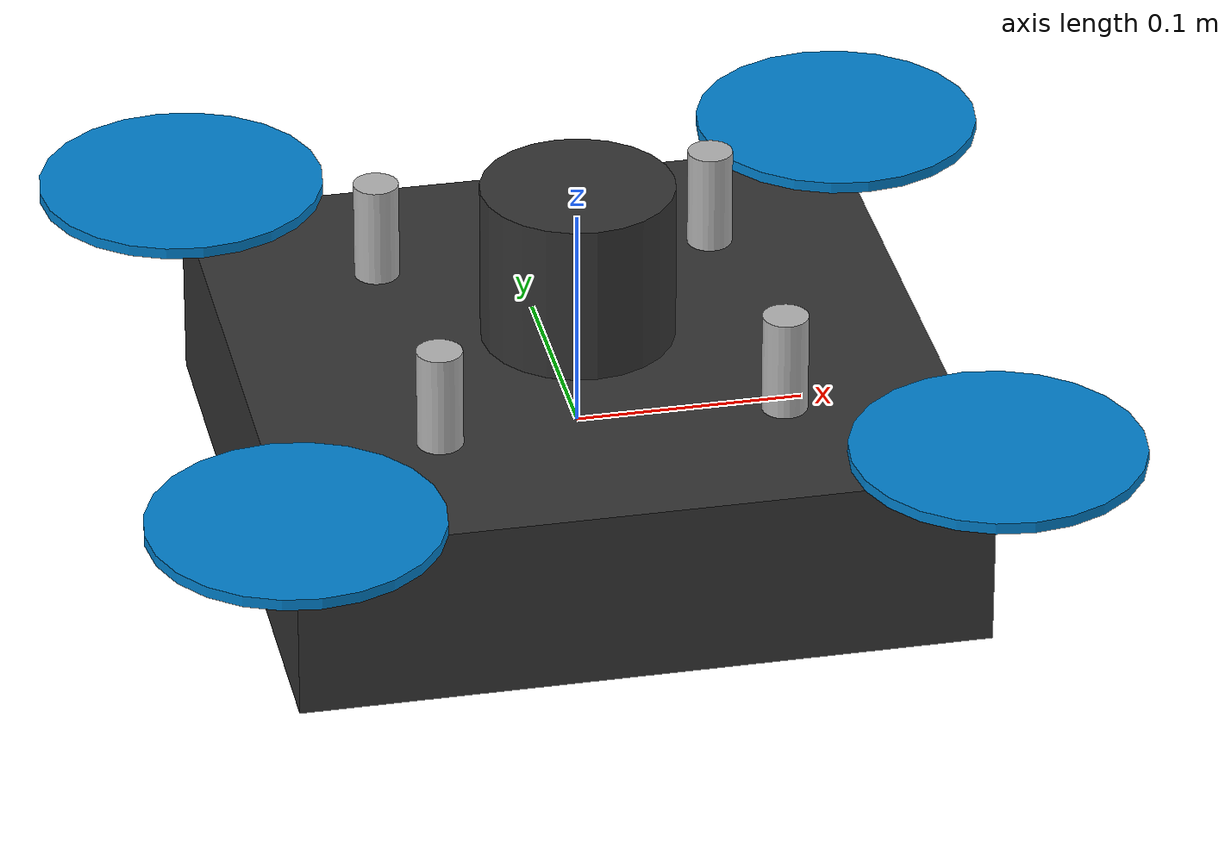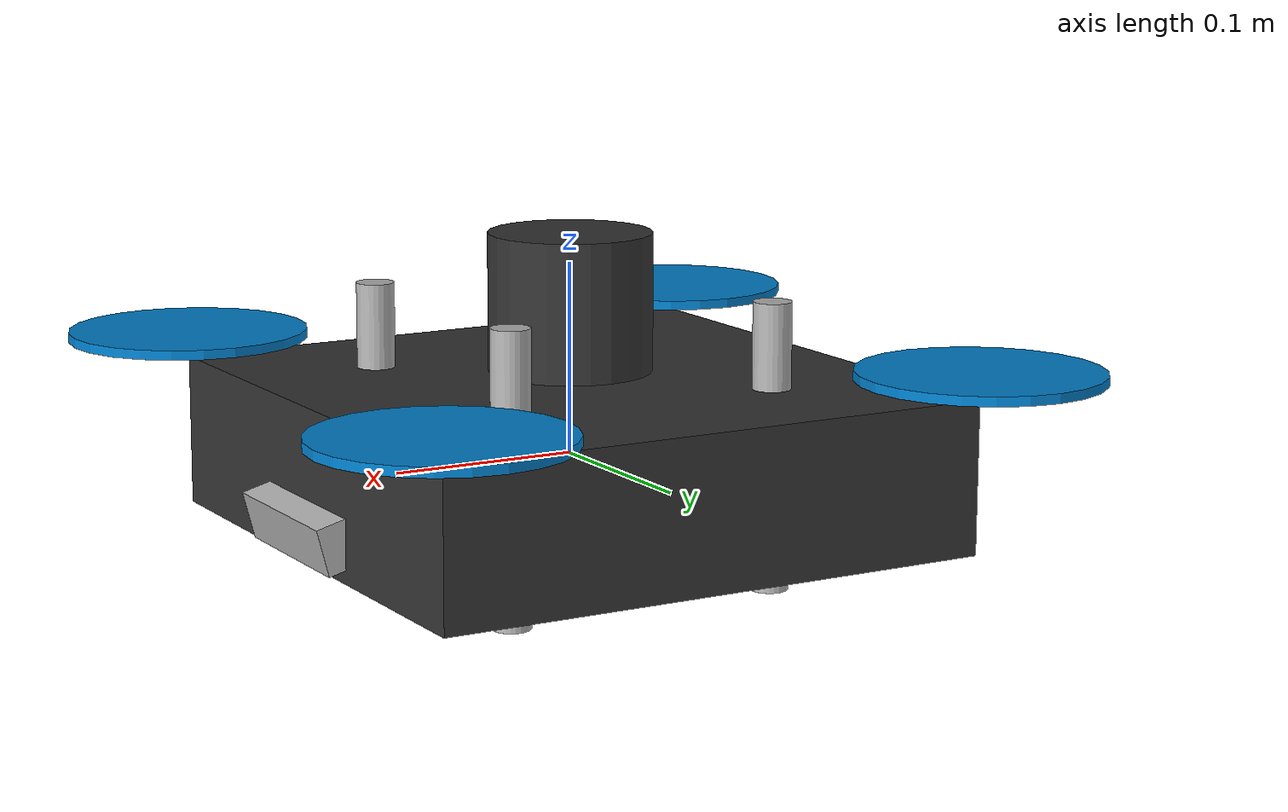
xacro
<?xml version="1.0"?>
<robot xmlns:xacro="http://www.ros.org/wiki/xacro" name="aetherscan_drone">

  <!-- Properties -->
  <xacro:property name="body_length" value="0.30"/>
  <xacro:property name="body_width" value="0.30"/>
  <xacro:property name="body_height" value="0.08"/>
  <xacro:property name="arm_length" value="0.15"/>
  <xacro:property name="arm_radius" value="0.01"/>
  <xacro:property name="rotor_radius" value="0.0635"/>
  <xacro:property name="rotor_height" value="0.005"/>
  <xacro:property name="mass" value="1.5"/>
  <xacro:property name="arm_mass" value="0.05"/>
  <xacro:property name="rotor_mass" value="0.02"/>
  <xacro:property name="camera_mass" value="0.1"/>
  <xacro:property name="lidar_mass" value="0.3"/>

  <!-- Materials -->
  <material name="dark_grey">
    <color rgba="0.2 0.2 0.2 1.0"/>
  </material>
  <material name="light_grey">
    <color rgba="0.7 0.7 0.7 1.0"/>
  </material>
  <material name="blue">
    <color rgba="0.0 0.5 0.8 1.0"/>
  </material>
  <material name="red">
    <color rgba="0.8 0.1 0.1 1.0"/>
  </material>

  <!-- Base Link -->
  <link name="base_link">
    <visual>
      <geometry>
        <box size="${body_length} ${body_width} ${body_height}"/>
      </geometry>
      <material name="dark_grey"/>
    </visual>
    <collision>
      <geometry>
        <box size="${body_length} ${body_width} ${body_height}"/>
      </geometry>
    </collision>
    <inertial>
      <mass value="${mass}"/>
      <inertia ixx="${mass*(body_width*body_width + body_height*body_height)/12}"
               ixy="0" ixz="0"
               iyy="${mass*(body_length*body_length + body_height*body_height)/12}"
               iyz="0"
               izz="${mass*(body_length*body_length + body_width*body_width)/12}"/>
    </inertial>
  </link>

  <!-- Rotor Macro -->
  <xacro:macro name="rotor" params="name x y direction">
    <link name="${name}_arm">
      <visual>
        <origin xyz="${x/2} ${y/2} 0.01" rpy="0 0 ${direction * 0.785}"/>
        <geometry>
          <cylinder radius="${arm_radius}" length="${arm_length}"/>
        </geometry>
        <material name="light_grey"/>
      </visual>
      <inertial>
        <mass value="${arm_mass}"/>
        <inertia ixx="0.00001" ixy="0" ixz="0" iyy="0.00001" iyz="0" izz="0.00001"/>
      </inertial>
    </link>

    <joint name="${name}_arm_joint" type="fixed">
      <parent link="base_link"/>
      <child link="${name}_arm"/>
      <origin xyz="0 0 0"/>
    </joint>

    <link name="${name}_rotor">
      <visual>
        <geometry>
          <cylinder radius="${rotor_radius}" length="${rotor_height}"/>
        </geometry>
        <material name="blue"/>
      </visual>
      <collision>
        <geometry>
          <cylinder radius="${rotor_radius}" length="${rotor_height}"/>
        </geometry>
      </collision>
      <inertial>
        <mass value="${rotor_mass}"/>
        <inertia ixx="${rotor_mass*rotor_radius*rotor_radius/4}"
                 ixy="0" ixz="0"
                 iyy="${rotor_mass*rotor_radius*rotor_radius/4}"
                 iyz="0"
                 izz="${rotor_mass*rotor_radius*rotor_radius/2}"/>
      </inertial>
    </link>

    <joint name="${name}_rotor_joint" type="continuous">
      <parent link="base_link"/>
      <child link="${name}_rotor"/>
      <origin xyz="${x} ${y} ${body_height/2 + rotor_height/2 + 0.01}"/>
      <axis xyz="0 0 1"/>
    </joint>
  </xacro:macro>

  <!-- Create 4 rotors -->
  <xacro:rotor name="front_left"  x="${arm_length}" y="${arm_length}" direction="1"/>
  <xacro:rotor name="front_right" x="${arm_length}" y="${-arm_length}" direction="-1"/>
  <xacro:rotor name="rear_left"   x="${-arm_length}" y="${arm_length}" direction="-1"/>
  <xacro:rotor name="rear_right"  x="${-arm_length}" y="${-arm_length}" direction="1"/>

  <!-- RGB-D Camera (Intel RealSense D435 style) -->
  <link name="camera_link">
    <visual>
      <geometry>
        <box size="0.025 0.09 0.025"/>
      </geometry>
      <material name="light_grey"/>
    </visual>
    <collision>
      <geometry>
        <box size="0.025 0.09 0.025"/>
      </geometry>
    </collision>
    <inertial>
      <mass value="${camera_mass}"/>
      <inertia ixx="0.0001" ixy="0" ixz="0" iyy="0.0001" iyz="0" izz="0.0001"/>
    </inertial>
  </link>

  <joint name="camera_joint" type="fixed">
    <parent link="base_link"/>
    <child link="camera_link"/>
    <origin xyz="${body_length/2} 0 -0.02" rpy="0 0.26 0"/>
  </joint>

  <link name="camera_optical_frame"/>
  <joint name="camera_optical_joint" type="fixed">
    <parent link="camera_link"/>
    <child link="camera_optical_frame"/>
    <origin xyz="0 0 0" rpy="-1.5708 0 -1.5708"/>
  </joint>

  <!-- 3D LiDAR (VLP-16 style) -->
  <link name="lidar_link">
    <visual>
      <geometry>
        <cylinder radius="0.0425" length="0.072"/>
      </geometry>
      <material name="dark_grey"/>
    </visual>
    <collision>
      <geometry>
        <cylinder radius="0.0425" length="0.072"/>
      </geometry>
    </collision>
    <inertial>
      <mass value="${lidar_mass}"/>
      <inertia ixx="0.0002" ixy="0" ixz="0" iyy="0.0002" iyz="0" izz="0.0003"/>
    </inertial>
  </link>

  <joint name="lidar_joint" type="fixed">
    <parent link="base_link"/>
    <child link="lidar_link"/>
    <origin xyz="0 0 ${body_height/2 + 0.04}" rpy="0 0 0"/>
  </joint>

  <!-- IMU -->
  <link name="imu_link">
    <inertial>
      <mass value="0.01"/>
      <inertia ixx="0.00001" ixy="0" ixz="0" iyy="0.00001" iyz="0" izz="0.00001"/>
    </inertial>
  </link>

  <joint name="imu_joint" type="fixed">
    <parent link="base_link"/>
    <child link="imu_link"/>
    <origin xyz="0 0 0" rpy="0 0 0"/>
  </joint>

  <!-- Downward Rangefinder -->
  <link name="rangefinder_link">
    <visual>
      <geometry>
        <cylinder radius="0.01" length="0.02"/>
      </geometry>
      <material name="red"/>
    </visual>
    <inertial>
      <mass value="0.01"/>
      <inertia ixx="0.00001" ixy="0" ixz="0" iyy="0.00001" iyz="0" izz="0.00001"/>
    </inertial>
  </link>

  <joint name="rangefinder_joint" type="fixed">
    <parent link="base_link"/>
    <child link="rangefinder_link"/>
    <origin xyz="0 0 ${-body_height/2 - 0.01}" rpy="0 1.5708 0"/>
  </joint>

  <!-- Gazebo Plugins -->
  <gazebo>
    <plugin filename="gz-sim-multicopter-motor-model-system"
            name="gz::sim::systems::MulticopterMotorModel">
      <robotNamespace>aetherscan</robotNamespace>
    </plugin>
  </gazebo>

  <gazebo reference="imu_link">
    <sensor name="imu_sensor" type="imu">
      <always_on>true</always_on>
      <update_rate>200</update_rate>
      <topic>imu</topic>
    </sensor>
  </gazebo>

  <gazebo reference="camera_link">
    <sensor name="rgbd_camera" type="rgbd_camera">
      <always_on>true</always_on>
      <update_rate>30</update_rate>
      <camera>
        <horizontal_fov>1.518</horizontal_fov>
        <image>
          <width>640</width>
          <height>480</height>
          <format>R8G8B8</format>
        </image>
        <clip>
          <near>0.1</near>
          <far>10.0</far>
        </clip>
        <depth_camera>
          <clip>
            <near>0.1</near>
            <far>10.0</far>
          </clip>
        </depth_camera>
      </camera>
      <topic>camera</topic>
    </sensor>
  </gazebo>

  <gazebo reference="lidar_link">
    <sensor name="lidar_3d" type="gpu_lidar">
      <always_on>true</always_on>
      <update_rate>10</update_rate>
      <lidar>
        <scan>
          <horizontal>
            <samples>360</samples>
            <resolution>1</resolution>
            <min_angle>-3.14159</min_angle>
            <max_angle>3.14159</max_angle>
          </horizontal>
          <vertical>
            <samples>16</samples>
            <resolution>1</resolution>
            <min_angle>-0.2618</min_angle>
            <max_angle>0.2618</max_angle>
          </vertical>
        </scan>
        <range>
          <min>0.3</min>
          <max>20.0</max>
        </range>
      </lidar>
      <topic>lidar</topic>
    </sensor>
  </gazebo>

  <gazebo reference="rangefinder_link">
    <sensor name="downward_rangefinder" type="ray">
      <always_on>true</always_on>
      <update_rate>50</update_rate>
      <ray>
        <scan>
          <horizontal>
            <samples>1</samples>
            <resolution>1</resolution>
            <min_angle>0</min_angle>
            <max_angle>0</max_angle>
          </horizontal>
        </scan>
        <range>
          <min>0.05</min>
          <max>8.0</max>
        </range>
      </ray>
      <topic>rangefinder</topic>
    </sensor>
  </gazebo>

</robot>
